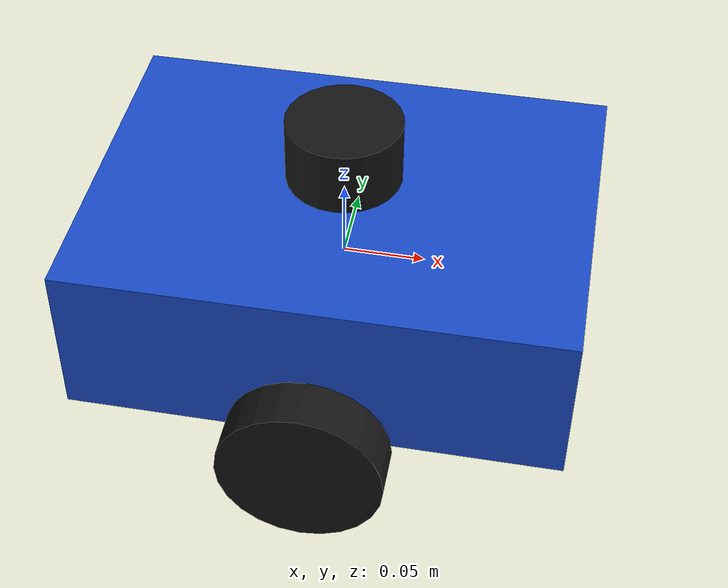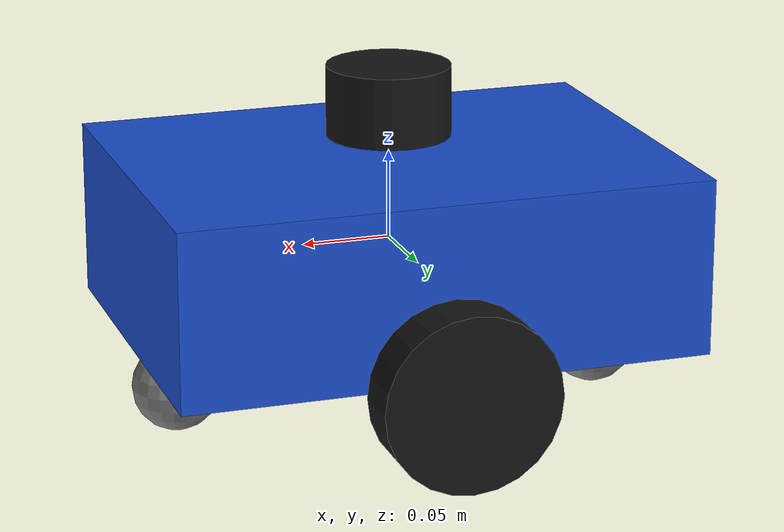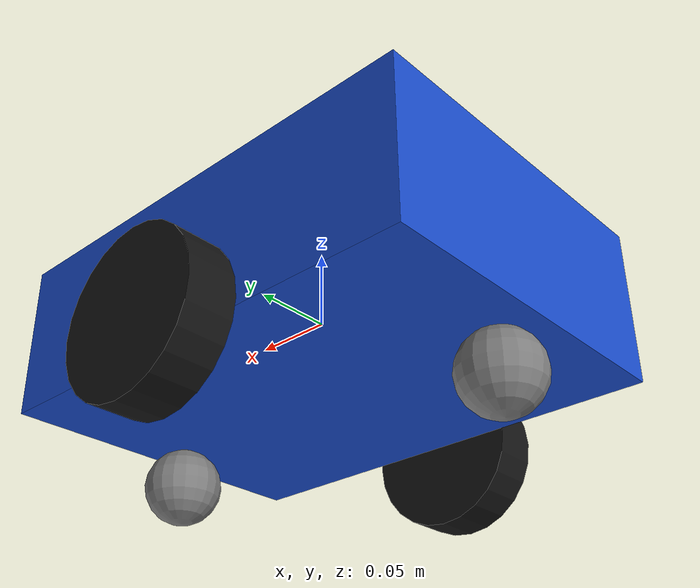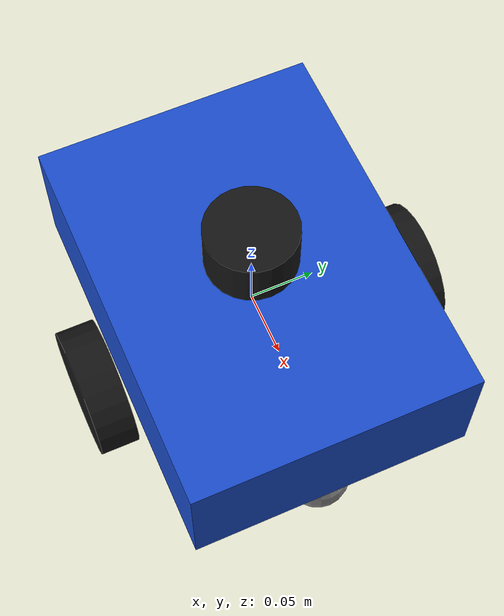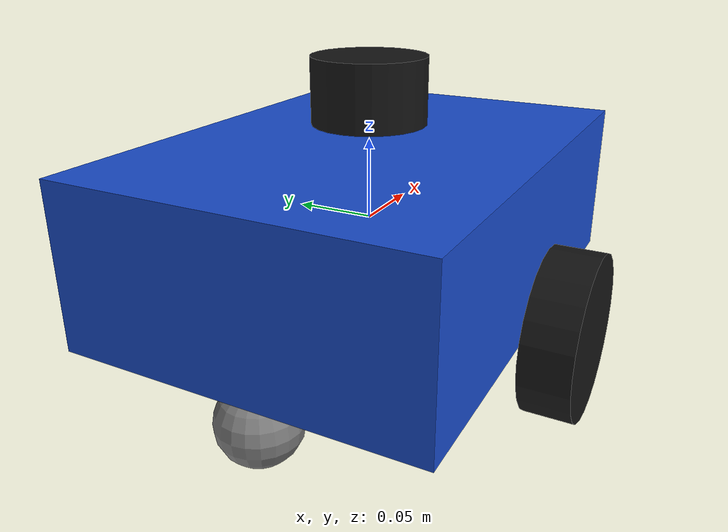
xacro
<?xml version="1.0"?>
<robot name="patrol_robot" xmlns:xacro="http://www.ros.org/wiki/xacro">

  <!-- Degistirilebilir robot boyutlari (metre) -->
  <xacro:property name="body_length" value="0.30"/>
  <xacro:property name="body_width" value="0.22"/>
  <xacro:property name="body_height" value="0.10"/>

  <xacro:property name="wheel_radius" value="0.05"/>
  <xacro:property name="wheel_width" value="0.03"/>
  <!-- Tekerlek merkezleri arasi mesafe: govde genisligi + tekerlek genisligi + 5 mm bosluk -->
  <xacro:property name="wheel_separation" value="0.26"/>

  <xacro:property name="caster_radius" value="0.025"/>

  <!-- Ana govde. Atalet (kutu): ixx=m/12*(w^2+h^2), iyy=m/12*(l^2+h^2), izz=m/12*(l^2+w^2) -->
  <link name="base_link">
    <visual>
      <origin xyz="0 0 0" rpy="0 0 0"/>
      <geometry>
        <box size="${body_length} ${body_width} ${body_height}"/>
      </geometry>
      <material name="blue">
        <color rgba="0.1 0.3 0.8 1.0"/>
      </material>
    </visual>

    <collision>
      <origin xyz="0 0 0" rpy="0 0 0"/>
      <geometry>
        <box size="${body_length} ${body_width} ${body_height}"/>
      </geometry>
    </collision>

    <inertial>
      <origin xyz="0 0 0" rpy="0 0 0"/>
      <mass value="5.0"/>
      <inertia ixx="0.0243" ixy="0.0" ixz="0.0"
               iyy="0.0417" iyz="0.0" izz="0.0577"/>
    </inertial>
  </link>

  <!-- Sol tekerlek. Atalet (silindir, dönme ekseni Y): iyy=m*r^2/2, ixx=izz=m/12*(3*r^2+h^2) -->
  <link name="left_wheel_link">
    <visual>
      <origin xyz="0 0 0" rpy="1.5708 0 0"/>
      <geometry>
        <cylinder radius="${wheel_radius}" length="${wheel_width}"/>
      </geometry>
      <material name="black">
        <color rgba="0.08 0.08 0.08 1.0"/>
      </material>
    </visual>

    <collision>
      <origin xyz="0 0 0" rpy="1.5708 0 0"/>
      <geometry>
        <cylinder radius="${wheel_radius}" length="${wheel_width}"/>
      </geometry>
    </collision>

    <inertial>
      <mass value="0.3"/>
      <inertia ixx="0.00021" ixy="0.0" ixz="0.0"
               iyy="0.000375" iyz="0.0" izz="0.00021"/>
    </inertial>
  </link>

  <joint name="left_wheel_joint" type="continuous">
    <parent link="base_link"/>
    <child link="left_wheel_link"/>
    <origin xyz="0 ${wheel_separation / 2} ${-body_height / 2}" rpy="0 0 0"/>
    <axis xyz="0 1 0"/>
  </joint>

  <!-- Sag tekerlek -->
  <link name="right_wheel_link">
    <visual>
      <origin xyz="0 0 0" rpy="1.5708 0 0"/>
      <geometry>
        <cylinder radius="${wheel_radius}" length="${wheel_width}"/>
      </geometry>
      <material name="black">
        <color rgba="0.08 0.08 0.08 1.0"/>
      </material>
    </visual>

    <collision>
      <origin xyz="0 0 0" rpy="1.5708 0 0"/>
      <geometry>
        <cylinder radius="${wheel_radius}" length="${wheel_width}"/>
      </geometry>
    </collision>

    <inertial>
      <mass value="0.3"/>
      <inertia ixx="0.00021" ixy="0.0" ixz="0.0"
               iyy="0.000375" iyz="0.0" izz="0.00021"/>
    </inertial>
  </link>

  <joint name="right_wheel_joint" type="continuous">
    <parent link="base_link"/>
    <child link="right_wheel_link"/>
    <origin xyz="0 ${-wheel_separation / 2} ${-body_height / 2}" rpy="0 0 0"/>
    <axis xyz="0 1 0"/>
  </joint>

  <!-- On destek kuresi. Atalet (kure): 2/5*m*r^2 -->
  <link name="front_caster_link">
    <visual>
      <geometry>
        <sphere radius="${caster_radius}"/>
      </geometry>
      <material name="grey">
        <color rgba="0.5 0.5 0.5 1.0"/>
      </material>
    </visual>

    <collision>
      <geometry>
        <sphere radius="${caster_radius}"/>
      </geometry>
    </collision>

    <inertial>
      <mass value="0.1"/>
      <inertia ixx="0.000025" ixy="0.0" ixz="0.0"
               iyy="0.000025" iyz="0.0" izz="0.000025"/>
    </inertial>
  </link>

  <joint name="front_caster_joint" type="fixed">
    <parent link="base_link"/>
    <child link="front_caster_link"/>
    <origin xyz="${body_length / 2 - caster_radius} 0 ${-body_height / 2 - caster_radius}" rpy="0 0 0"/>
  </joint>

  <!-- Arka destek kuresi: kutle merkezinin iki destek arasinda kalmasi icin -->
  <link name="rear_caster_link">
    <visual>
      <geometry>
        <sphere radius="${caster_radius}"/>
      </geometry>
      <material name="grey">
        <color rgba="0.5 0.5 0.5 1.0"/>
      </material>
    </visual>

    <collision>
      <geometry>
        <sphere radius="${caster_radius}"/>
      </geometry>
    </collision>

    <inertial>
      <mass value="0.1"/>
      <inertia ixx="0.000025" ixy="0.0" ixz="0.0"
               iyy="0.000025" iyz="0.0" izz="0.000025"/>
    </inertial>
  </link>

  <joint name="rear_caster_joint" type="fixed">
    <parent link="base_link"/>
    <child link="rear_caster_link"/>
    <origin xyz="${-body_length / 2 + caster_radius} 0 ${-body_height / 2 - caster_radius}" rpy="0 0 0"/>
  </joint>

  <!-- LiDAR sensoru: base_link uzerine sabitlenir -->
  <link name="lidar_link">
    <visual>
      <geometry>
        <cylinder radius="0.035" length="0.04"/>
      </geometry>
      <material name="lidar_black">
        <color rgba="0.08 0.08 0.08 1.0"/>
      </material>
    </visual>
    <inertial>
      <mass value="0.1"/>
      <inertia ixx="0.00005" ixy="0.0" ixz="0.0"
               iyy="0.00005" iyz="0.0" izz="0.00005"/>
    </inertial>
  </link>

  <joint name="lidar_joint" type="fixed">
    <parent link="base_link"/>
    <child link="lidar_link"/>
    <origin xyz="0 0 0.08" rpy="0 0 0"/>
  </joint>

  <gazebo reference="lidar_link">
    <sensor name="lidar_sensor" type="gpu_lidar">
      <topic>/scan</topic>
      <update_rate>10</update_rate>
      <always_on>true</always_on>
      <visualize>true</visualize>
      <lidar>
        <scan>
          <horizontal>
            <samples>360</samples>
            <resolution>1</resolution>
            <min_angle>-3.14159265</min_angle>
            <max_angle>3.14159265</max_angle>
          </horizontal>
        </scan>
        <range>
          <min>0.12</min>
          <max>8.0</max>
          <resolution>0.01</resolution>
        </range>
      </lidar>
    </sensor>
  </gazebo>

  <!-- Gazebo diferansiyel surus eklentisi: /cmd_vel hiz komutunu tekerleklere cevirir -->
  <gazebo>
    <plugin filename="gz-sim-diff-drive-system" name="gz::sim::systems::DiffDrive">
      <left_joint>left_wheel_joint</left_joint>
      <right_joint>right_wheel_joint</right_joint>
      <wheel_separation>${wheel_separation}</wheel_separation>
      <wheel_radius>${wheel_radius}</wheel_radius>
      <topic>cmd_vel</topic>
      <odom_topic>odom</odom_topic>
      <frame_id>odom</frame_id>
      <child_frame_id>base_link</child_frame_id>
    </plugin>

    <plugin filename="gz-sim-joint-state-publisher-system" name="gz::sim::systems::JointStatePublisher">
      <topic>joint_states</topic>
    </plugin>
  </gazebo>

</robot>
